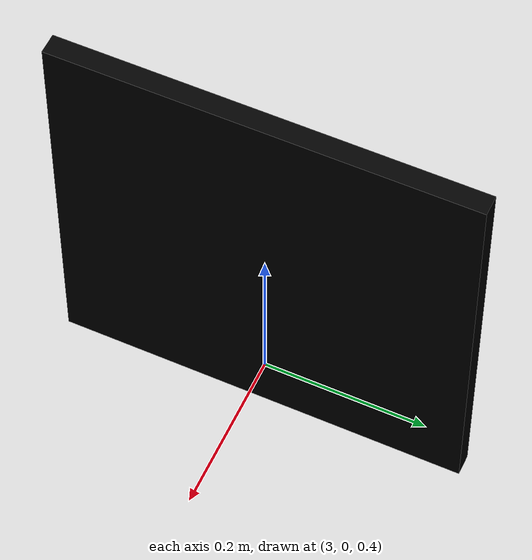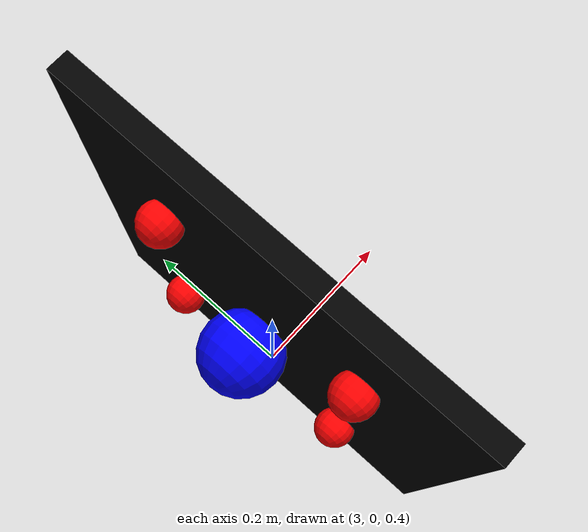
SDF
<sdf version="1.6">
 <world name="default">
  <gravity>0 0 -9.8</gravity>
  <magnetic_field>6e-06 2.3e-05 -4.2e-05</magnetic_field>
  <atmosphere type="adiabatic"/>
  <physics name="default_physics" default="0" type="ode">
   <max_step_size>0.001</max_step_size>
   <real_time_factor>1</real_time_factor>
   <real_time_update_rate>1000</real_time_update_rate>
  </physics>
  <scene>
   <ambient>0.4 0.4 0.4 1</ambient>
   <background>0.7 0.7 0.7 1</background>
   <shadows>false</shadows>
   <grid>false</grid>
   <origin_visual>false</origin_visual>
  </scene>
  <spherical_coordinates>
   <surface_model>EARTH_WGS84</surface_model>
   <latitude_deg>0</latitude_deg>
   <longitude_deg>0</longitude_deg>
   <elevation>0</elevation>
   <heading_deg>0</heading_deg>
  </spherical_coordinates>
  <model name="black_wall_with_red_dots">
   <static>true</static>
   <include><uri>model://black_wall_with_red_dots</uri></include>
   <pose>3 0 0.6 0 1.5708 3.1416</pose>
  </model>
  <light name="LivingRoom_CeilingLight_0" type="point">
   <pose>1.194296 4.155759 2.2 0 -0 0</pose>
   <diffuse>0.5 0.5 0.5 1</diffuse>
   <specular>0.1 0.1 0.1 1</specular>
   <attenuation>
    <range>20</range>
    <constant>0.32</constant>
    <linear>0.01</linear>
    <quadratic>0.03</quadratic>
   </attenuation>
   <cast_shadows>0</cast_shadows>
   <direction>0 0 -1</direction>
  </light>
  <light name="LivingRoom_CeilingLight_1" type="point">
   <pose>1.194296 -1.589959 2.2 0 -0 0</pose>
   <diffuse>0.5 0.5 0.5 1</diffuse>
   <specular>0.1 0.1 0.1 1</specular>
   <attenuation>
    <range>20</range>
    <constant>0.05</constant>
    <linear>0.01</linear>
    <quadratic>0.09</quadratic>
   </attenuation>
   <cast_shadows>0</cast_shadows>
   <direction>0 0 -1</direction>
  </light>
 </world>
</sdf>

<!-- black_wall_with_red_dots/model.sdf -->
<sdf version="1.6">
  <model name="black_wall_with_red_dots">
    <!-- Define the black wall -->
    <link name="black_wall">
      <visual name="visual">
        <geometry>
          <box>
            <size>0.5 0.5 0.025</size>  <!-- Wall of size 0.5x0.5 meters with a thickness of 0.025 meters -->
          </box>
        </geometry>
        <material>
          <ambient>0 0 0 1</ambient>  <!-- Black color -->
          <diffuse>0 0 0 1</diffuse>
        </material>
      </visual>
      <collision name="collision">
        <geometry>
          <box>
            <size>0.5 0.5 0.025</size>
          </box>
        </geometry>
      </collision>
    </link>

    <!-- Add four red dots on the black wall -->
    <link name="dot1">
      <visual name="red_dot">
        <geometry>
          <sphere>
            <radius>0.025</radius>  <!-- Small red dot with a radius of 0.0125 meters -->
          </sphere>
        </geometry>
        <material>
          <ambient>1 0 0 1</ambient>  <!-- Red color -->
          <diffuse>1 0 0 1</diffuse>
        </material>
      </visual>
      <pose>0.125 0.125 0.025 0 0 0</pose> <!-- Position of the first dot -->
    </link>

    <link name="dot2">
      <visual name="red_dot">
        <geometry>
          <sphere>
            <radius>0.025</radius>
          </sphere>
        </geometry>
        <material>
          <ambient>1 0 0 1</ambient>  <!-- Red color -->
          <diffuse>1 0 0 1</diffuse>
        </material>
      </visual>
      <pose>-0.125 0.125 0.025 0 0 0</pose> <!-- Position of the second dot -->
    </link>

    <link name="dot3">
      <visual name="red_dot">
        <geometry>
          <sphere>
            <radius>0.025</radius>
          </sphere>
        </geometry>
        <material>
          <ambient>1 0 0 1</ambient>  <!-- Red color -->
          <diffuse>1 0 0 1</diffuse>
        </material>
      </visual>
      <pose>0.125 -0.125 0.025 0 0 0</pose> <!-- Position of the third dot -->
    </link>

    <link name="dot4">
      <visual name="red_dot">
        <geometry>
          <sphere>
            <radius>0.025</radius>
          </sphere>
        </geometry>
        <material>
          <ambient>1 0 0 1</ambient>  <!-- Red color -->
          <diffuse>1 0 0 1</diffuse>
        </material>
      </visual>
      <pose>-0.125 -0.125 0.025 0 0 0</pose> <!-- Position of the fourth dot -->
    </link>

    <link name="blue_ball">
      <visual name="blue_ball_visual">
        <geometry>
          <sphere>
            <radius>0.05</radius>  <!-- Blue ball with a radius of 0.05 meters -->
          </sphere>
        </geometry>
        <material>
          <ambient>0 0 1 1</ambient>  <!-- Blue color -->
          <diffuse>0 0 1 1</diffuse>
        </material>
      </visual>
      <pose>0 0 0.05 0 0 0</pose> <!-- Position of the blue ball in the center -->
    </link>

  </model>
</sdf>
